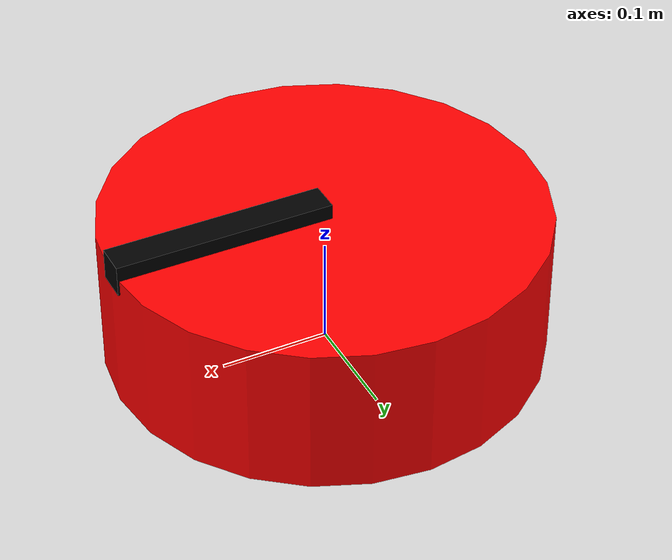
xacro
<?xml version="1.0"?>
<robot name="robot" xmlns:xacro="http://www.ros.org/wiki/xacro">

<xacro:arg name="prefix" default="robot/"/>
<xacro:arg name="R" default="1"/>
<xacro:arg name="G" default="0"/>
<xacro:arg name="B" default="0"/>
<xacro:arg name="radius" default="0.2"/>

<xacro:property name="radius" value="$(arg radius)"/>
<xacro:property name="height" value="${radius*0.7}"/>

<material name="color">
    <color rgba="$(arg R) $(arg G) $(arg B) 1"/>
</material>
<material name="black">
    <color rgba="0 0 0 1"/>
</material>

<link name="$(arg prefix)footprint">
<visual>
    <origin xyz="0 0 ${height/2}"/>
    <geometry>
    <cylinder length="${height}" radius="${radius}"/>
    </geometry>
    <material name="color"/>
</visual>

<visual>
    <origin xyz="${radius/2} 0 ${height}"/>
    <geometry>
    <box size="${radius} ${radius/7} ${radius/7}"/>
    </geometry>
    <material name="black"/>
</visual>
</link>

</robot>
